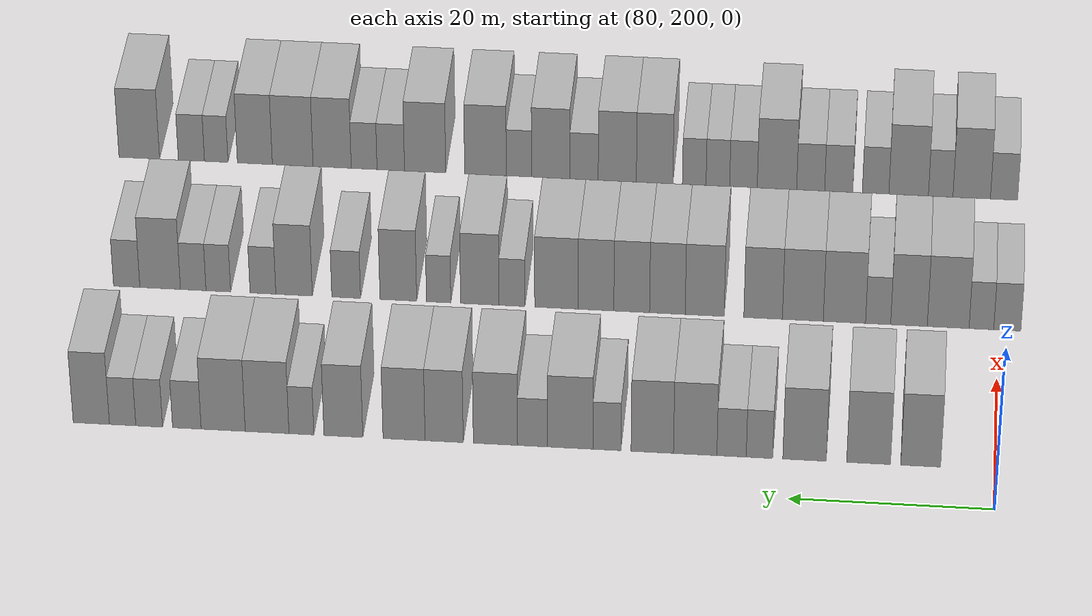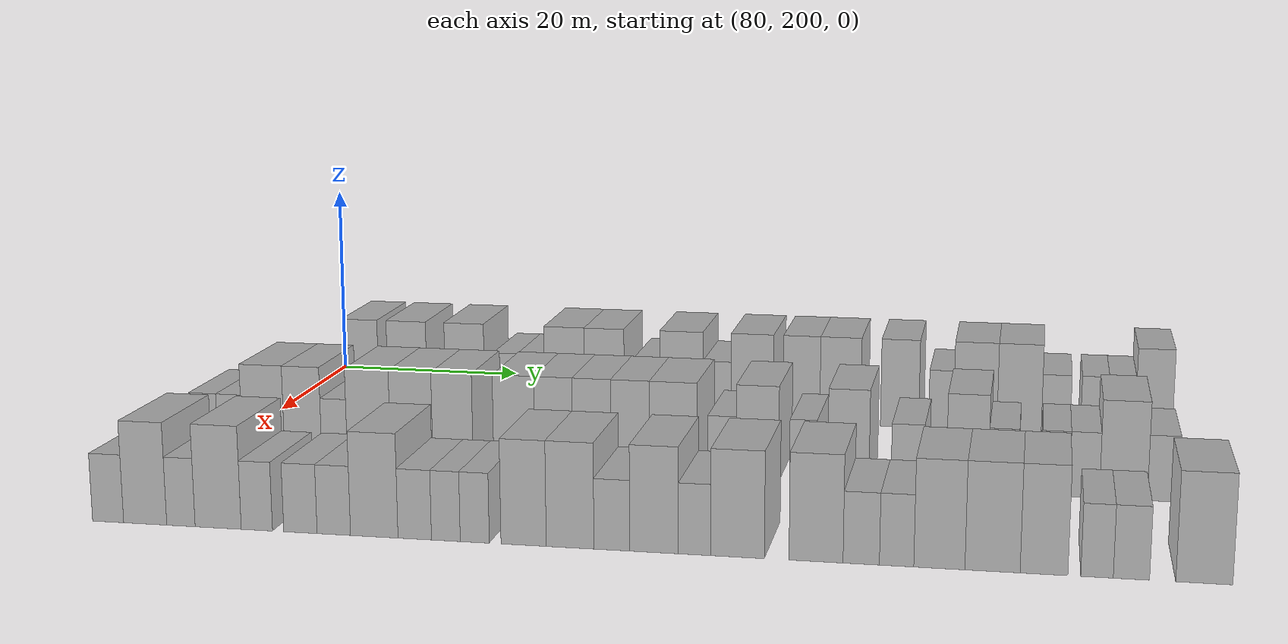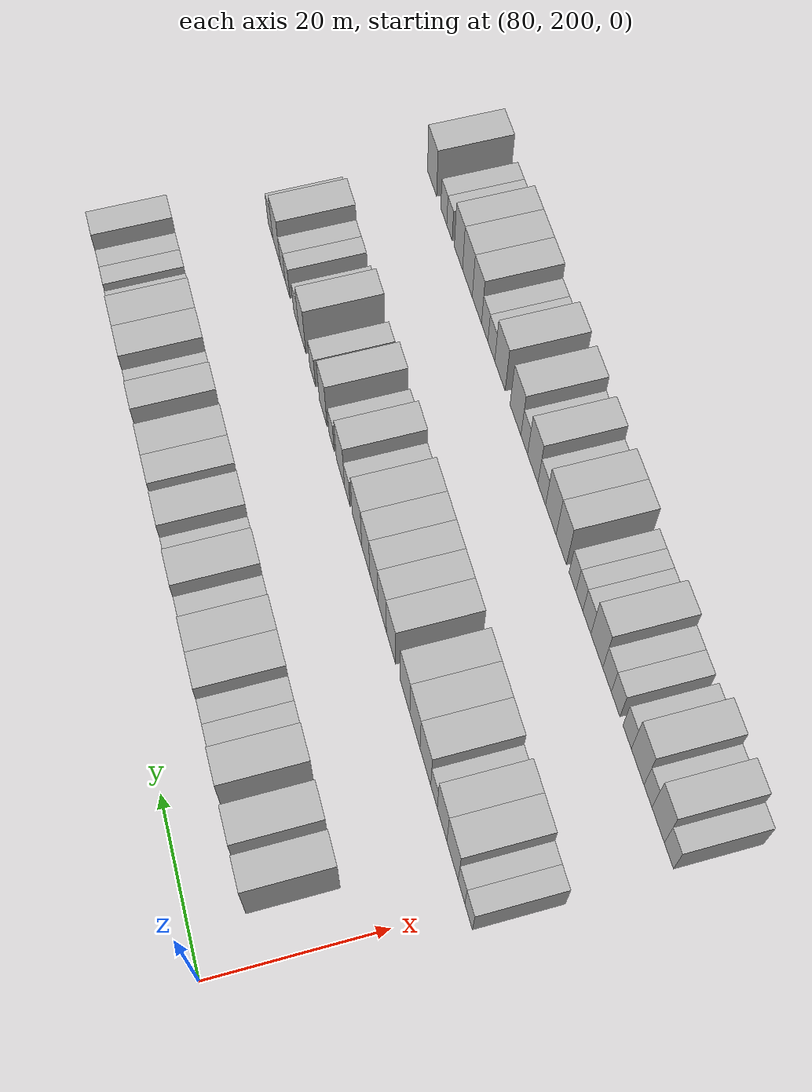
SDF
<sdf version="1.6">
 <world name="default">
  <model name="building_716">
   <static>1</static>
   <pose>91.0000 207.3070 0 0.000000 0.000000 0.000000</pose>
   <link name="link">
    <pose>0 0 4.50 0 0 0</pose>
    <collision name="collision"><geometry><box><size>10.0000 3.8865 9.0000</size></box></geometry></collision>
    <visual name="visual">
     <cast_shadows>0</cast_shadows>
     <geometry><box><size>10.0000 3.8865 9.0000</size></box></geometry>
     <material>
      <script>
       <uri>model://HANNAS_wall/materials/scripts</uri>
       <uri>model://HANNAS_wall/materials/textures</uri>
       <name>vrc/HANNAS_wall</name>
      </script>
     </material>
    </visual>
   </link>
  </model>
  <model name="building_717">
   <static>1</static>
   <pose>91.0000 212.3930 0 0.000000 0.000000 0.000000</pose>
   <link name="link">
    <pose>0 0 4.50 0 0 0</pose>
    <collision name="collision"><geometry><box><size>10.0000 4.2854 9.0000</size></box></geometry></collision>
    <visual name="visual">
     <cast_shadows>0</cast_shadows>
     <geometry><box><size>10.0000 4.2854 9.0000</size></box></geometry>
     <material>
      <script>
       <uri>model://HANNAS_wall/materials/scripts</uri>
       <uri>model://HANNAS_wall/materials/textures</uri>
       <name>vrc/HANNAS_wall</name>
      </script>
     </material>
    </visual>
   </link>
  </model>
  <model name="building_718">
   <static>1</static>
   <pose>91.0000 218.6601 0 0.000000 0.000000 0.000000</pose>
   <link name="link">
    <pose>0 0 4.50 0 0 0</pose>
    <collision name="collision"><geometry><box><size>10.0000 4.2486 9.0000</size></box></geometry></collision>
    <visual name="visual">
     <cast_shadows>0</cast_shadows>
     <geometry><box><size>10.0000 4.2486 9.0000</size></box></geometry>
     <material>
      <script>
       <uri>model://HANNAS_wall/materials/scripts</uri>
       <uri>model://HANNAS_wall/materials/textures</uri>
       <name>vrc/HANNAS_wall</name>
      </script>
     </material>
    </visual>
   </link>
  </model>
  <model name="building_719">
   <static>1</static>
   <pose>91.0000 223.0777 0 0.000000 0.000000 0.000000</pose>
   <link name="link">
    <pose>0 0 3.00 0 0 0</pose>
    <collision name="collision"><geometry><box><size>10.0000 2.5867 6.0000</size></box></geometry></collision>
    <visual name="visual">
     <cast_shadows>0</cast_shadows>
     <geometry><box><size>10.0000 2.5867 6.0000</size></box></geometry>
     <material>
      <script>
       <uri>model://HANNAS_wall/materials/scripts</uri>
       <uri>model://HANNAS_wall/materials/textures</uri>
       <name>vrc/HANNAS_wall</name>
      </script>
     </material>
    </visual>
   </link>
  </model>
  <model name="building_720">
   <static>1</static>
   <pose>91.0000 225.8113 0 0.000000 0.000000 0.000000</pose>
   <link name="link">
    <pose>0 0 3.00 0 0 0</pose>
    <collision name="collision"><geometry><box><size>10.0000 2.8806 6.0000</size></box></geometry></collision>
    <visual name="visual">
     <cast_shadows>0</cast_shadows>
     <geometry><box><size>10.0000 2.8806 6.0000</size></box></geometry>
     <material>
      <script>
       <uri>model://HANNAS_wall/materials/scripts</uri>
       <uri>model://HANNAS_wall/materials/textures</uri>
       <name>vrc/HANNAS_wall</name>
      </script>
     </material>
    </visual>
   </link>
  </model>
  <model name="building_721">
   <static>1</static>
   <pose>91.0000 229.3831 0 0.000000 0.000000 0.000000</pose>
   <link name="link">
    <pose>0 0 4.50 0 0 0</pose>
    <collision name="collision"><geometry><box><size>10.0000 4.2629 9.0000</size></box></geometry></collision>
    <visual name="visual">
     <cast_shadows>0</cast_shadows>
     <geometry><box><size>10.0000 4.2629 9.0000</size></box></geometry>
     <material>
      <script>
       <uri>model://HANNAS_wall/materials/scripts</uri>
       <uri>model://HANNAS_wall/materials/textures</uri>
       <name>vrc/HANNAS_wall</name>
      </script>
     </material>
    </visual>
   </link>
  </model>
  <model name="building_722">
   <static>1</static>
   <pose>91.0000 233.5994 0 0.000000 0.000000 0.000000</pose>
   <link name="link">
    <pose>0 0 4.50 0 0 0</pose>
    <collision name="collision"><geometry><box><size>10.0000 4.1697 9.0000</size></box></geometry></collision>
    <visual name="visual">
     <cast_shadows>0</cast_shadows>
     <geometry><box><size>10.0000 4.1697 9.0000</size></box></geometry>
     <material>
      <script>
       <uri>model://HANNAS_wall/materials/scripts</uri>
       <uri>model://HANNAS_wall/materials/textures</uri>
       <name>vrc/HANNAS_wall</name>
      </script>
     </material>
    </visual>
   </link>
  </model>
  <model name="building_723">
   <static>1</static>
   <pose>91.0000 238.0609 0 0.000000 0.000000 0.000000</pose>
   <link name="link">
    <pose>0 0 3.00 0 0 0</pose>
    <collision name="collision"><geometry><box><size>10.0000 2.7532 6.0000</size></box></geometry></collision>
    <visual name="visual">
     <cast_shadows>0</cast_shadows>
     <geometry><box><size>10.0000 2.7532 6.0000</size></box></geometry>
     <material>
      <script>
       <uri>model://HANNAS_wall/materials/scripts</uri>
       <uri>model://HANNAS_wall/materials/textures</uri>
       <name>vrc/HANNAS_wall</name>
      </script>
     </material>
    </visual>
   </link>
  </model>
  <model name="building_724">
   <static>1</static>
   <pose>91.0000 241.6782 0 0.000000 0.000000 0.000000</pose>
   <link name="link">
    <pose>0 0 4.50 0 0 0</pose>
    <collision name="collision"><geometry><box><size>10.0000 4.4815 9.0000</size></box></geometry></collision>
    <visual name="visual">
     <cast_shadows>0</cast_shadows>
     <geometry><box><size>10.0000 4.4815 9.0000</size></box></geometry>
     <material>
      <script>
       <uri>model://HANNAS_wall/materials/scripts</uri>
       <uri>model://HANNAS_wall/materials/textures</uri>
       <name>vrc/HANNAS_wall</name>
      </script>
     </material>
    </visual>
   </link>
  </model>
  <model name="building_725">
   <static>1</static>
   <pose>91.0000 245.3875 0 0.000000 0.000000 0.000000</pose>
   <link name="link">
    <pose>0 0 3.00 0 0 0</pose>
    <collision name="collision"><geometry><box><size>10.0000 2.9370 6.0000</size></box></geometry></collision>
    <visual name="visual">
     <cast_shadows>0</cast_shadows>
     <geometry><box><size>10.0000 2.9370 6.0000</size></box></geometry>
     <material>
      <script>
       <uri>model://HANNAS_wall/materials/scripts</uri>
       <uri>model://HANNAS_wall/materials/textures</uri>
       <name>vrc/HANNAS_wall</name>
      </script>
     </material>
    </visual>
   </link>
  </model>
  <model name="building_726">
   <static>1</static>
   <pose>91.0000 249.0387 0 0.000000 0.000000 0.000000</pose>
   <link name="link">
    <pose>0 0 4.50 0 0 0</pose>
    <collision name="collision"><geometry><box><size>10.0000 4.3656 9.0000</size></box></geometry></collision>
    <visual name="visual">
     <cast_shadows>0</cast_shadows>
     <geometry><box><size>10.0000 4.3656 9.0000</size></box></geometry>
     <material>
      <script>
       <uri>model://HANNAS_wall/materials/scripts</uri>
       <uri>model://HANNAS_wall/materials/textures</uri>
       <name>vrc/HANNAS_wall</name>
      </script>
     </material>
    </visual>
   </link>
  </model>
  <model name="building_727">
   <static>1</static>
   <pose>91.0000 254.1042 0 0.000000 0.000000 0.000000</pose>
   <link name="link">
    <pose>0 0 4.50 0 0 0</pose>
    <collision name="collision"><geometry><box><size>10.0000 3.7653 9.0000</size></box></geometry></collision>
    <visual name="visual">
     <cast_shadows>0</cast_shadows>
     <geometry><box><size>10.0000 3.7653 9.0000</size></box></geometry>
     <material>
      <script>
       <uri>model://HANNAS_wall/materials/scripts</uri>
       <uri>model://HANNAS_wall/materials/textures</uri>
       <name>vrc/HANNAS_wall</name>
      </script>
     </material>
    </visual>
   </link>
  </model>
  <model name="building_728">
   <static>1</static>
   <pose>91.0000 258.0682 0 0.000000 0.000000 0.000000</pose>
   <link name="link">
    <pose>0 0 4.50 0 0 0</pose>
    <collision name="collision"><geometry><box><size>10.0000 4.1626 9.0000</size></box></geometry></collision>
    <visual name="visual">
     <cast_shadows>0</cast_shadows>
     <geometry><box><size>10.0000 4.1626 9.0000</size></box></geometry>
     <material>
      <script>
       <uri>model://HANNAS_wall/materials/scripts</uri>
       <uri>model://HANNAS_wall/materials/textures</uri>
       <name>vrc/HANNAS_wall</name>
      </script>
     </material>
    </visual>
   </link>
  </model>
  <model name="building_729">
   <static>1</static>
   <pose>91.0000 264.0752 0 0.000000 0.000000 0.000000</pose>
   <link name="link">
    <pose>0 0 4.50 0 0 0</pose>
    <collision name="collision"><geometry><box><size>10.0000 3.8515 9.0000</size></box></geometry></collision>
    <visual name="visual">
     <cast_shadows>0</cast_shadows>
     <geometry><box><size>10.0000 3.8515 9.0000</size></box></geometry>
     <material>
      <script>
       <uri>model://HANNAS_wall/materials/scripts</uri>
       <uri>model://HANNAS_wall/materials/textures</uri>
       <name>vrc/HANNAS_wall</name>
      </script>
     </material>
    </visual>
   </link>
  </model>
  <model name="building_730">
   <static>1</static>
   <pose>91.0000 268.2361 0 0.000000 0.000000 0.000000</pose>
   <link name="link">
    <pose>0 0 3.00 0 0 0</pose>
    <collision name="collision"><geometry><box><size>10.0000 2.4701 6.0000</size></box></geometry></collision>
    <visual name="visual">
     <cast_shadows>0</cast_shadows>
     <geometry><box><size>10.0000 2.4701 6.0000</size></box></geometry>
     <material>
      <script>
       <uri>model://HANNAS_wall/materials/scripts</uri>
       <uri>model://HANNAS_wall/materials/textures</uri>
       <name>vrc/HANNAS_wall</name>
      </script>
     </material>
    </visual>
   </link>
  </model>
  <model name="building_731">
   <static>1</static>
   <pose>91.0000 271.6397 0 0.000000 0.000000 0.000000</pose>
   <link name="link">
    <pose>0 0 4.50 0 0 0</pose>
    <collision name="collision"><geometry><box><size>10.0000 4.3372 9.0000</size></box></geometry></collision>
    <visual name="visual">
     <cast_shadows>0</cast_shadows>
     <geometry><box><size>10.0000 4.3372 9.0000</size></box></geometry>
     <material>
      <script>
       <uri>model://HANNAS_wall/materials/scripts</uri>
       <uri>model://HANNAS_wall/materials/textures</uri>
       <name>vrc/HANNAS_wall</name>
      </script>
     </material>
    </visual>
   </link>
  </model>
  <model name="building_732">
   <static>1</static>
   <pose>91.0000 276.0017 0 0.000000 0.000000 0.000000</pose>
   <link name="link">
    <pose>0 0 4.50 0 0 0</pose>
    <collision name="collision"><geometry><box><size>10.0000 4.3868 9.0000</size></box></geometry></collision>
    <visual name="visual">
     <cast_shadows>0</cast_shadows>
     <geometry><box><size>10.0000 4.3868 9.0000</size></box></geometry>
     <material>
      <script>
       <uri>model://HANNAS_wall/materials/scripts</uri>
       <uri>model://HANNAS_wall/materials/textures</uri>
       <name>vrc/HANNAS_wall</name>
      </script>
     </material>
    </visual>
   </link>
  </model>
  <model name="building_733">
   <static>1</static>
   <pose>91.0000 279.6147 0 0.000000 0.000000 0.000000</pose>
   <link name="link">
    <pose>0 0 3.00 0 0 0</pose>
    <collision name="collision"><geometry><box><size>10.0000 2.8391 6.0000</size></box></geometry></collision>
    <visual name="visual">
     <cast_shadows>0</cast_shadows>
     <geometry><box><size>10.0000 2.8391 6.0000</size></box></geometry>
     <material>
      <script>
       <uri>model://HANNAS_wall/materials/scripts</uri>
       <uri>model://HANNAS_wall/materials/textures</uri>
       <name>vrc/HANNAS_wall</name>
      </script>
     </material>
    </visual>
   </link>
  </model>
  <model name="building_734">
   <static>1</static>
   <pose>91.0000 283.3653 0 0.000000 0.000000 0.000000</pose>
   <link name="link">
    <pose>0 0 3.00 0 0 0</pose>
    <collision name="collision"><geometry><box><size>10.0000 2.6621 6.0000</size></box></geometry></collision>
    <visual name="visual">
     <cast_shadows>0</cast_shadows>
     <geometry><box><size>10.0000 2.6621 6.0000</size></box></geometry>
     <material>
      <script>
       <uri>model://HANNAS_wall/materials/scripts</uri>
       <uri>model://HANNAS_wall/materials/textures</uri>
       <name>vrc/HANNAS_wall</name>
      </script>
     </material>
    </visual>
   </link>
  </model>
  <model name="building_735">
   <static>1</static>
   <pose>91.0000 286.0090 0 0.000000 0.000000 0.000000</pose>
   <link name="link">
    <pose>0 0 3.00 0 0 0</pose>
    <collision name="collision"><geometry><box><size>10.0000 2.6254 6.0000</size></box></geometry></collision>
    <visual name="visual">
     <cast_shadows>0</cast_shadows>
     <geometry><box><size>10.0000 2.6254 6.0000</size></box></geometry>
     <material>
      <script>
       <uri>model://HANNAS_wall/materials/scripts</uri>
       <uri>model://HANNAS_wall/materials/textures</uri>
       <name>vrc/HANNAS_wall</name>
      </script>
     </material>
    </visual>
   </link>
  </model>
  <model name="building_736">
   <static>1</static>
   <pose>91.0000 289.1247 0 0.000000 0.000000 0.000000</pose>
   <link name="link">
    <pose>0 0 4.50 0 0 0</pose>
    <collision name="collision"><geometry><box><size>10.0000 3.6060 9.0000</size></box></geometry></collision>
    <visual name="visual">
     <cast_shadows>0</cast_shadows>
     <geometry><box><size>10.0000 3.6060 9.0000</size></box></geometry>
     <material>
      <script>
       <uri>model://HANNAS_wall/materials/scripts</uri>
       <uri>model://HANNAS_wall/materials/textures</uri>
       <name>vrc/HANNAS_wall</name>
      </script>
     </material>
    </visual>
   </link>
  </model>
  <model name="building_896">
   <static>1</static>
   <pose>113.0000 199.0584 0 0.000000 0.000000 0.000000</pose>
   <link name="link">
    <pose>0 0 3.00 0 0 0</pose>
    <collision name="collision"><geometry><box><size>10.0000 2.7329 6.0000</size></box></geometry></collision>
    <visual name="visual">
     <cast_shadows>0</cast_shadows>
     <geometry><box><size>10.0000 2.7329 6.0000</size></box></geometry>
     <material>
      <script>
       <uri>model://HANNAS_wall/materials/scripts</uri>
       <uri>model://HANNAS_wall/materials/textures</uri>
       <name>vrc/HANNAS_wall</name>
      </script>
     </material>
    </visual>
   </link>
  </model>
  <model name="building_897">
   <static>1</static>
   <pose>113.0000 201.6703 0 0.000000 0.000000 0.000000</pose>
   <link name="link">
    <pose>0 0 3.00 0 0 0</pose>
    <collision name="collision"><geometry><box><size>10.0000 2.4909 6.0000</size></box></geometry></collision>
    <visual name="visual">
     <cast_shadows>0</cast_shadows>
     <geometry><box><size>10.0000 2.4909 6.0000</size></box></geometry>
     <material>
      <script>
       <uri>model://HANNAS_wall/materials/scripts</uri>
       <uri>model://HANNAS_wall/materials/textures</uri>
       <name>vrc/HANNAS_wall</name>
      </script>
     </material>
    </visual>
   </link>
  </model>
  <model name="building_898">
   <static>1</static>
   <pose>113.0000 205.0286 0 0.000000 0.000000 0.000000</pose>
   <link name="link">
    <pose>0 0 4.50 0 0 0</pose>
    <collision name="collision"><geometry><box><size>10.0000 4.2257 9.0000</size></box></geometry></collision>
    <visual name="visual">
     <cast_shadows>0</cast_shadows>
     <geometry><box><size>10.0000 4.2257 9.0000</size></box></geometry>
     <material>
      <script>
       <uri>model://HANNAS_wall/materials/scripts</uri>
       <uri>model://HANNAS_wall/materials/textures</uri>
       <name>vrc/HANNAS_wall</name>
      </script>
     </material>
    </visual>
   </link>
  </model>
  <model name="building_899">
   <static>1</static>
   <pose>113.0000 208.9925 0 0.000000 0.000000 0.000000</pose>
   <link name="link">
    <pose>0 0 4.50 0 0 0</pose>
    <collision name="collision"><geometry><box><size>10.0000 3.7021 9.0000</size></box></geometry></collision>
    <visual name="visual">
     <cast_shadows>0</cast_shadows>
     <geometry><box><size>10.0000 3.7021 9.0000</size></box></geometry>
     <material>
      <script>
       <uri>model://HANNAS_wall/materials/scripts</uri>
       <uri>model://HANNAS_wall/materials/textures</uri>
       <name>vrc/HANNAS_wall</name>
      </script>
     </material>
    </visual>
   </link>
  </model>
  <model name="building_900">
   <static>1</static>
   <pose>113.0000 212.1144 0 0.000000 0.000000 0.000000</pose>
   <link name="link">
    <pose>0 0 3.00 0 0 0</pose>
    <collision name="collision"><geometry><box><size>10.0000 2.5417 6.0000</size></box></geometry></collision>
    <visual name="visual">
     <cast_shadows>0</cast_shadows>
     <geometry><box><size>10.0000 2.5417 6.0000</size></box></geometry>
     <material>
      <script>
       <uri>model://HANNAS_wall/materials/scripts</uri>
       <uri>model://HANNAS_wall/materials/textures</uri>
       <name>vrc/HANNAS_wall</name>
      </script>
     </material>
    </visual>
   </link>
  </model>
  <model name="building_901">
   <static>1</static>
   <pose>113.0000 215.5264 0 0.000000 0.000000 0.000000</pose>
   <link name="link">
    <pose>0 0 4.50 0 0 0</pose>
    <collision name="collision"><geometry><box><size>10.0000 4.2824 9.0000</size></box></geometry></collision>
    <visual name="visual">
     <cast_shadows>0</cast_shadows>
     <geometry><box><size>10.0000 4.2824 9.0000</size></box></geometry>
     <material>
      <script>
       <uri>model://HANNAS_wall/materials/scripts</uri>
       <uri>model://HANNAS_wall/materials/textures</uri>
       <name>vrc/HANNAS_wall</name>
      </script>
     </material>
    </visual>
   </link>
  </model>
  <model name="building_902">
   <static>1</static>
   <pose>113.0000 219.7402 0 0.000000 0.000000 0.000000</pose>
   <link name="link">
    <pose>0 0 4.50 0 0 0</pose>
    <collision name="collision"><geometry><box><size>10.0000 4.1451 9.0000</size></box></geometry></collision>
    <visual name="visual">
     <cast_shadows>0</cast_shadows>
     <geometry><box><size>10.0000 4.1451 9.0000</size></box></geometry>
     <material>
      <script>
       <uri>model://HANNAS_wall/materials/scripts</uri>
       <uri>model://HANNAS_wall/materials/textures</uri>
       <name>vrc/HANNAS_wall</name>
      </script>
     </material>
    </visual>
   </link>
  </model>
  <model name="building_903">
   <static>1</static>
   <pose>113.0000 223.7726 0 0.000000 0.000000 0.000000</pose>
   <link name="link">
    <pose>0 0 4.50 0 0 0</pose>
    <collision name="collision"><geometry><box><size>10.0000 3.9197 9.0000</size></box></geometry></collision>
    <visual name="visual">
     <cast_shadows>0</cast_shadows>
     <geometry><box><size>10.0000 3.9197 9.0000</size></box></geometry>
     <material>
      <script>
       <uri>model://HANNAS_wall/materials/scripts</uri>
       <uri>model://HANNAS_wall/materials/textures</uri>
       <name>vrc/HANNAS_wall</name>
      </script>
     </material>
    </visual>
   </link>
  </model>
  <model name="building_904">
   <static>1</static>
   <pose>113.0000 229.7136 0 0.000000 0.000000 0.000000</pose>
   <link name="link">
    <pose>0 0 4.50 0 0 0</pose>
    <collision name="collision"><geometry><box><size>10.0000 3.9625 9.0000</size></box></geometry></collision>
    <visual name="visual">
     <cast_shadows>0</cast_shadows>
     <geometry><box><size>10.0000 3.9625 9.0000</size></box></geometry>
     <material>
      <script>
       <uri>model://HANNAS_wall/materials/scripts</uri>
       <uri>model://HANNAS_wall/materials/textures</uri>
       <name>vrc/HANNAS_wall</name>
      </script>
     </material>
    </visual>
   </link>
  </model>
  <model name="building_905">
   <static>1</static>
   <pose>113.0000 233.5064 0 0.000000 0.000000 0.000000</pose>
   <link name="link">
    <pose>0 0 4.50 0 0 0</pose>
    <collision name="collision"><geometry><box><size>10.0000 3.6230 9.0000</size></box></geometry></collision>
    <visual name="visual">
     <cast_shadows>0</cast_shadows>
     <geometry><box><size>10.0000 3.6230 9.0000</size></box></geometry>
     <material>
      <script>
       <uri>model://HANNAS_wall/materials/scripts</uri>
       <uri>model://HANNAS_wall/materials/textures</uri>
       <name>vrc/HANNAS_wall</name>
      </script>
     </material>
    </visual>
   </link>
  </model>
  <model name="building_906">
   <static>1</static>
   <pose>113.0000 237.1377 0 0.000000 0.000000 0.000000</pose>
   <link name="link">
    <pose>0 0 4.50 0 0 0</pose>
    <collision name="collision"><geometry><box><size>10.0000 3.6398 9.0000</size></box></geometry></collision>
    <visual name="visual">
     <cast_shadows>0</cast_shadows>
     <geometry><box><size>10.0000 3.6398 9.0000</size></box></geometry>
     <material>
      <script>
       <uri>model://HANNAS_wall/materials/scripts</uri>
       <uri>model://HANNAS_wall/materials/textures</uri>
       <name>vrc/HANNAS_wall</name>
      </script>
     </material>
    </visual>
   </link>
  </model>
  <model name="building_907">
   <static>1</static>
   <pose>113.0000 240.7746 0 0.000000 0.000000 0.000000</pose>
   <link name="link">
    <pose>0 0 4.50 0 0 0</pose>
    <collision name="collision"><geometry><box><size>10.0000 3.6340 9.0000</size></box></geometry></collision>
    <visual name="visual">
     <cast_shadows>0</cast_shadows>
     <geometry><box><size>10.0000 3.6340 9.0000</size></box></geometry>
     <material>
      <script>
       <uri>model://HANNAS_wall/materials/scripts</uri>
       <uri>model://HANNAS_wall/materials/textures</uri>
       <name>vrc/HANNAS_wall</name>
      </script>
     </material>
    </visual>
   </link>
  </model>
  <model name="building_908">
   <static>1</static>
   <pose>113.0000 244.8087 0 0.000000 0.000000 0.000000</pose>
   <link name="link">
    <pose>0 0 4.50 0 0 0</pose>
    <collision name="collision"><geometry><box><size>10.0000 4.4341 9.0000</size></box></geometry></collision>
    <visual name="visual">
     <cast_shadows>0</cast_shadows>
     <geometry><box><size>10.0000 4.4341 9.0000</size></box></geometry>
     <material>
      <script>
       <uri>model://HANNAS_wall/materials/scripts</uri>
       <uri>model://HANNAS_wall/materials/textures</uri>
       <name>vrc/HANNAS_wall</name>
      </script>
     </material>
    </visual>
   </link>
  </model>
  <model name="building_909">
   <static>1</static>
   <pose>113.0000 249.3443 0 0.000000 0.000000 0.000000</pose>
   <link name="link">
    <pose>0 0 3.00 0 0 0</pose>
    <collision name="collision"><geometry><box><size>10.0000 2.6371 6.0000</size></box></geometry></collision>
    <visual name="visual">
     <cast_shadows>0</cast_shadows>
     <geometry><box><size>10.0000 2.6371 6.0000</size></box></geometry>
     <material>
      <script>
       <uri>model://HANNAS_wall/materials/scripts</uri>
       <uri>model://HANNAS_wall/materials/textures</uri>
       <name>vrc/HANNAS_wall</name>
      </script>
     </material>
    </visual>
   </link>
  </model>
  <model name="building_910">
   <static>1</static>
   <pose>113.0000 252.6325 0 0.000000 0.000000 0.000000</pose>
   <link name="link">
    <pose>0 0 4.50 0 0 0</pose>
    <collision name="collision"><geometry><box><size>10.0000 3.9393 9.0000</size></box></geometry></collision>
    <visual name="visual">
     <cast_shadows>0</cast_shadows>
     <geometry><box><size>10.0000 3.9393 9.0000</size></box></geometry>
     <material>
      <script>
       <uri>model://HANNAS_wall/materials/scripts</uri>
       <uri>model://HANNAS_wall/materials/textures</uri>
       <name>vrc/HANNAS_wall</name>
      </script>
     </material>
    </visual>
   </link>
  </model>
  <model name="building_911">
   <static>1</static>
   <pose>113.0000 256.8468 0 0.000000 0.000000 0.000000</pose>
   <link name="link">
    <pose>0 0 3.00 0 0 0</pose>
    <collision name="collision"><geometry><box><size>10.0000 2.4893 6.0000</size></box></geometry></collision>
    <visual name="visual">
     <cast_shadows>0</cast_shadows>
     <geometry><box><size>10.0000 2.4893 6.0000</size></box></geometry>
     <material>
      <script>
       <uri>model://HANNAS_wall/materials/scripts</uri>
       <uri>model://HANNAS_wall/materials/textures</uri>
       <name>vrc/HANNAS_wall</name>
      </script>
     </material>
    </visual>
   </link>
  </model>
  <model name="building_912">
   <static>1</static>
   <pose>113.0000 260.9731 0 0.000000 0.000000 0.000000</pose>
   <link name="link">
    <pose>0 0 4.50 0 0 0</pose>
    <collision name="collision"><geometry><box><size>10.0000 3.7632 9.0000</size></box></geometry></collision>
    <visual name="visual">
     <cast_shadows>0</cast_shadows>
     <geometry><box><size>10.0000 3.7632 9.0000</size></box></geometry>
     <material>
      <script>
       <uri>model://HANNAS_wall/materials/scripts</uri>
       <uri>model://HANNAS_wall/materials/textures</uri>
       <name>vrc/HANNAS_wall</name>
      </script>
     </material>
    </visual>
   </link>
  </model>
  <model name="building_913">
   <static>1</static>
   <pose>113.0000 266.3288 0 0.000000 0.000000 0.000000</pose>
   <link name="link">
    <pose>0 0 3.00 0 0 0</pose>
    <collision name="collision"><geometry><box><size>10.0000 2.9481 6.0000</size></box></geometry></collision>
    <visual name="visual">
     <cast_shadows>0</cast_shadows>
     <geometry><box><size>10.0000 2.9481 6.0000</size></box></geometry>
     <material>
      <script>
       <uri>model://HANNAS_wall/materials/scripts</uri>
       <uri>model://HANNAS_wall/materials/textures</uri>
       <name>vrc/HANNAS_wall</name>
      </script>
     </material>
    </visual>
   </link>
  </model>
  <model name="building_914">
   <static>1</static>
   <pose>113.0000 271.6770 0 0.000000 0.000000 0.000000</pose>
   <link name="link">
    <pose>0 0 4.50 0 0 0</pose>
    <collision name="collision"><geometry><box><size>10.0000 3.7484 9.0000</size></box></geometry></collision>
    <visual name="visual">
     <cast_shadows>0</cast_shadows>
     <geometry><box><size>10.0000 3.7484 9.0000</size></box></geometry>
     <material>
      <script>
       <uri>model://HANNAS_wall/materials/scripts</uri>
       <uri>model://HANNAS_wall/materials/textures</uri>
       <name>vrc/HANNAS_wall</name>
      </script>
     </material>
    </visual>
   </link>
  </model>
  <model name="building_915">
   <static>1</static>
   <pose>113.0000 274.8765 0 0.000000 0.000000 0.000000</pose>
   <link name="link">
    <pose>0 0 3.00 0 0 0</pose>
    <collision name="collision"><geometry><box><size>10.0000 2.6505 6.0000</size></box></geometry></collision>
    <visual name="visual">
     <cast_shadows>0</cast_shadows>
     <geometry><box><size>10.0000 2.6505 6.0000</size></box></geometry>
     <material>
      <script>
       <uri>model://HANNAS_wall/materials/scripts</uri>
       <uri>model://HANNAS_wall/materials/textures</uri>
       <name>vrc/HANNAS_wall</name>
      </script>
     </material>
    </visual>
   </link>
  </model>
  <model name="building_916">
   <static>1</static>
   <pose>113.0000 279.4693 0 0.000000 0.000000 0.000000</pose>
   <link name="link">
    <pose>0 0 3.00 0 0 0</pose>
    <collision name="collision"><geometry><box><size>10.0000 2.5352 6.0000</size></box></geometry></collision>
    <visual name="visual">
     <cast_shadows>0</cast_shadows>
     <geometry><box><size>10.0000 2.5352 6.0000</size></box></geometry>
     <material>
      <script>
       <uri>model://HANNAS_wall/materials/scripts</uri>
       <uri>model://HANNAS_wall/materials/textures</uri>
       <name>vrc/HANNAS_wall</name>
      </script>
     </material>
    </visual>
   </link>
  </model>
  <model name="building_917">
   <static>1</static>
   <pose>113.0000 282.0536 0 0.000000 0.000000 0.000000</pose>
   <link name="link">
    <pose>0 0 3.00 0 0 0</pose>
    <collision name="collision"><geometry><box><size>10.0000 2.6333 6.0000</size></box></geometry></collision>
    <visual name="visual">
     <cast_shadows>0</cast_shadows>
     <geometry><box><size>10.0000 2.6333 6.0000</size></box></geometry>
     <material>
      <script>
       <uri>model://HANNAS_wall/materials/scripts</uri>
       <uri>model://HANNAS_wall/materials/textures</uri>
       <name>vrc/HANNAS_wall</name>
      </script>
     </material>
    </visual>
   </link>
  </model>
  <model name="building_918">
   <static>1</static>
   <pose>113.0000 285.4611 0 0.000000 0.000000 0.000000</pose>
   <link name="link">
    <pose>0 0 4.50 0 0 0</pose>
    <collision name="collision"><geometry><box><size>10.0000 4.1817 9.0000</size></box></geometry></collision>
    <visual name="visual">
     <cast_shadows>0</cast_shadows>
     <geometry><box><size>10.0000 4.1817 9.0000</size></box></geometry>
     <material>
      <script>
       <uri>model://HANNAS_wall/materials/scripts</uri>
       <uri>model://HANNAS_wall/materials/textures</uri>
       <name>vrc/HANNAS_wall</name>
      </script>
     </material>
    </visual>
   </link>
  </model>
  <model name="building_919">
   <static>1</static>
   <pose>113.0000 288.9073 0 0.000000 0.000000 0.000000</pose>
   <link name="link">
    <pose>0 0 3.00 0 0 0</pose>
    <collision name="collision"><geometry><box><size>10.0000 2.7107 6.0000</size></box></geometry></collision>
    <visual name="visual">
     <cast_shadows>0</cast_shadows>
     <geometry><box><size>10.0000 2.7107 6.0000</size></box></geometry>
     <material>
      <script>
       <uri>model://HANNAS_wall/materials/scripts</uri>
       <uri>model://HANNAS_wall/materials/textures</uri>
       <name>vrc/HANNAS_wall</name>
      </script>
     </material>
    </visual>
   </link>
  </model>
  <model name="building_1086">
   <static>1</static>
   <pose>135.0000 199.5993 0 0.000000 0.000000 0.000000</pose>
   <link name="link">
    <pose>0 0 3.00 0 0 0</pose>
    <collision name="collision"><geometry><box><size>10.0000 2.8401 6.0000</size></box></geometry></collision>
    <visual name="visual">
     <cast_shadows>0</cast_shadows>
     <geometry><box><size>10.0000 2.8401 6.0000</size></box></geometry>
     <material>
      <script>
       <uri>model://HANNAS_wall/materials/scripts</uri>
       <uri>model://HANNAS_wall/materials/textures</uri>
       <name>vrc/HANNAS_wall</name>
      </script>
     </material>
    </visual>
   </link>
  </model>
  <model name="building_1087">
   <static>1</static>
   <pose>135.0000 202.9779 0 0.000000 0.000000 0.000000</pose>
   <link name="link">
    <pose>0 0 4.50 0 0 0</pose>
    <collision name="collision"><geometry><box><size>10.0000 3.9171 9.0000</size></box></geometry></collision>
    <visual name="visual">
     <cast_shadows>0</cast_shadows>
     <geometry><box><size>10.0000 3.9171 9.0000</size></box></geometry>
     <material>
      <script>
       <uri>model://HANNAS_wall/materials/scripts</uri>
       <uri>model://HANNAS_wall/materials/textures</uri>
       <name>vrc/HANNAS_wall</name>
      </script>
     </material>
    </visual>
   </link>
  </model>
  <model name="building_1088">
   <static>1</static>
   <pose>135.0000 206.2181 0 0.000000 0.000000 0.000000</pose>
   <link name="link">
    <pose>0 0 3.00 0 0 0</pose>
    <collision name="collision"><geometry><box><size>10.0000 2.5634 6.0000</size></box></geometry></collision>
    <visual name="visual">
     <cast_shadows>0</cast_shadows>
     <geometry><box><size>10.0000 2.5634 6.0000</size></box></geometry>
     <material>
      <script>
       <uri>model://HANNAS_wall/materials/scripts</uri>
       <uri>model://HANNAS_wall/materials/textures</uri>
       <name>vrc/HANNAS_wall</name>
      </script>
     </material>
    </visual>
   </link>
  </model>
  <model name="building_1089">
   <static>1</static>
   <pose>135.0000 209.5683 0 0.000000 0.000000 0.000000</pose>
   <link name="link">
    <pose>0 0 4.50 0 0 0</pose>
    <collision name="collision"><geometry><box><size>10.0000 4.1370 9.0000</size></box></geometry></collision>
    <visual name="visual">
     <cast_shadows>0</cast_shadows>
     <geometry><box><size>10.0000 4.1370 9.0000</size></box></geometry>
     <material>
      <script>
       <uri>model://HANNAS_wall/materials/scripts</uri>
       <uri>model://HANNAS_wall/materials/textures</uri>
       <name>vrc/HANNAS_wall</name>
      </script>
     </material>
    </visual>
   </link>
  </model>
  <model name="building_1090">
   <static>1</static>
   <pose>135.0000 213.0289 0 0.000000 0.000000 0.000000</pose>
   <link name="link">
    <pose>0 0 3.00 0 0 0</pose>
    <collision name="collision"><geometry><box><size>10.0000 2.7841 6.0000</size></box></geometry></collision>
    <visual name="visual">
     <cast_shadows>0</cast_shadows>
     <geometry><box><size>10.0000 2.7841 6.0000</size></box></geometry>
     <material>
      <script>
       <uri>model://HANNAS_wall/materials/scripts</uri>
       <uri>model://HANNAS_wall/materials/textures</uri>
       <name>vrc/HANNAS_wall</name>
      </script>
     </material>
    </visual>
   </link>
  </model>
  <model name="building_1091">
   <static>1</static>
   <pose>135.0000 216.8939 0 0.000000 0.000000 0.000000</pose>
   <link name="link">
    <pose>0 0 3.00 0 0 0</pose>
    <collision name="collision"><geometry><box><size>10.0000 2.9460 6.0000</size></box></geometry></collision>
    <visual name="visual">
     <cast_shadows>0</cast_shadows>
     <geometry><box><size>10.0000 2.9460 6.0000</size></box></geometry>
     <material>
      <script>
       <uri>model://HANNAS_wall/materials/scripts</uri>
       <uri>model://HANNAS_wall/materials/textures</uri>
       <name>vrc/HANNAS_wall</name>
      </script>
     </material>
    </visual>
   </link>
  </model>
  <model name="building_1092">
   <static>1</static>
   <pose>135.0000 219.8355 0 0.000000 0.000000 0.000000</pose>
   <link name="link">
    <pose>0 0 3.00 0 0 0</pose>
    <collision name="collision"><geometry><box><size>10.0000 2.9373 6.0000</size></box></geometry></collision>
    <visual name="visual">
     <cast_shadows>0</cast_shadows>
     <geometry><box><size>10.0000 2.9373 6.0000</size></box></geometry>
     <material>
      <script>
       <uri>model://HANNAS_wall/materials/scripts</uri>
       <uri>model://HANNAS_wall/materials/textures</uri>
       <name>vrc/HANNAS_wall</name>
      </script>
     </material>
    </visual>
   </link>
  </model>
  <model name="building_1093">
   <static>1</static>
   <pose>135.0000 223.3748 0 0.000000 0.000000 0.000000</pose>
   <link name="link">
    <pose>0 0 4.50 0 0 0</pose>
    <collision name="collision"><geometry><box><size>10.0000 4.1413 9.0000</size></box></geometry></collision>
    <visual name="visual">
     <cast_shadows>0</cast_shadows>
     <geometry><box><size>10.0000 4.1413 9.0000</size></box></geometry>
     <material>
      <script>
       <uri>model://HANNAS_wall/materials/scripts</uri>
       <uri>model://HANNAS_wall/materials/textures</uri>
       <name>vrc/HANNAS_wall</name>
      </script>
     </material>
    </visual>
   </link>
  </model>
  <model name="building_1094">
   <static>1</static>
   <pose>135.0000 226.8955 0 0.000000 0.000000 0.000000</pose>
   <link name="link">
    <pose>0 0 3.00 0 0 0</pose>
    <collision name="collision"><geometry><box><size>10.0000 2.9000 6.0000</size></box></geometry></collision>
    <visual name="visual">
     <cast_shadows>0</cast_shadows>
     <geometry><box><size>10.0000 2.9000 6.0000</size></box></geometry>
     <material>
      <script>
       <uri>model://HANNAS_wall/materials/scripts</uri>
       <uri>model://HANNAS_wall/materials/textures</uri>
       <name>vrc/HANNAS_wall</name>
      </script>
     </material>
    </visual>
   </link>
  </model>
  <model name="building_1095">
   <static>1</static>
   <pose>135.0000 229.5856 0 0.000000 0.000000 0.000000</pose>
   <link name="link">
    <pose>0 0 3.00 0 0 0</pose>
    <collision name="collision"><geometry><box><size>10.0000 2.4802 6.0000</size></box></geometry></collision>
    <visual name="visual">
     <cast_shadows>0</cast_shadows>
     <geometry><box><size>10.0000 2.4802 6.0000</size></box></geometry>
     <material>
      <script>
       <uri>model://HANNAS_wall/materials/scripts</uri>
       <uri>model://HANNAS_wall/materials/textures</uri>
       <name>vrc/HANNAS_wall</name>
      </script>
     </material>
    </visual>
   </link>
  </model>
  <model name="building_1096">
   <static>1</static>
   <pose>135.0000 232.0705 0 0.000000 0.000000 0.000000</pose>
   <link name="link">
    <pose>0 0 3.00 0 0 0</pose>
    <collision name="collision"><geometry><box><size>10.0000 2.4895 6.0000</size></box></geometry></collision>
    <visual name="visual">
     <cast_shadows>0</cast_shadows>
     <geometry><box><size>10.0000 2.4895 6.0000</size></box></geometry>
     <material>
      <script>
       <uri>model://HANNAS_wall/materials/scripts</uri>
       <uri>model://HANNAS_wall/materials/textures</uri>
       <name>vrc/HANNAS_wall</name>
      </script>
     </material>
    </visual>
   </link>
  </model>
  <model name="building_1097">
   <static>1</static>
   <pose>135.0000 236.2385 0 0.000000 0.000000 0.000000</pose>
   <link name="link">
    <pose>0 0 4.50 0 0 0</pose>
    <collision name="collision"><geometry><box><size>10.0000 3.8464 9.0000</size></box></geometry></collision>
    <visual name="visual">
     <cast_shadows>0</cast_shadows>
     <geometry><box><size>10.0000 3.8464 9.0000</size></box></geometry>
     <material>
      <script>
       <uri>model://HANNAS_wall/materials/scripts</uri>
       <uri>model://HANNAS_wall/materials/textures</uri>
       <name>vrc/HANNAS_wall</name>
      </script>
     </material>
    </visual>
   </link>
  </model>
  <model name="building_1098">
   <static>1</static>
   <pose>135.0000 240.1733 0 0.000000 0.000000 0.000000</pose>
   <link name="link">
    <pose>0 0 4.50 0 0 0</pose>
    <collision name="collision"><geometry><box><size>10.0000 4.0233 9.0000</size></box></geometry></collision>
    <visual name="visual">
     <cast_shadows>0</cast_shadows>
     <geometry><box><size>10.0000 4.0233 9.0000</size></box></geometry>
     <material>
      <script>
       <uri>model://HANNAS_wall/materials/scripts</uri>
       <uri>model://HANNAS_wall/materials/textures</uri>
       <name>vrc/HANNAS_wall</name>
      </script>
     </material>
    </visual>
   </link>
  </model>
  <model name="building_1099">
   <static>1</static>
   <pose>135.0000 243.6812 0 0.000000 0.000000 0.000000</pose>
   <link name="link">
    <pose>0 0 3.00 0 0 0</pose>
    <collision name="collision"><geometry><box><size>10.0000 2.9924 6.0000</size></box></geometry></collision>
    <visual name="visual">
     <cast_shadows>0</cast_shadows>
     <geometry><box><size>10.0000 2.9924 6.0000</size></box></geometry>
     <material>
      <script>
       <uri>model://HANNAS_wall/materials/scripts</uri>
       <uri>model://HANNAS_wall/materials/textures</uri>
       <name>vrc/HANNAS_wall</name>
      </script>
     </material>
    </visual>
   </link>
  </model>
  <model name="building_1100">
   <static>1</static>
   <pose>135.0000 247.1975 0 0.000000 0.000000 0.000000</pose>
   <link name="link">
    <pose>0 0 4.50 0 0 0</pose>
    <collision name="collision"><geometry><box><size>10.0000 4.0402 9.0000</size></box></geometry></collision>
    <visual name="visual">
     <cast_shadows>0</cast_shadows>
     <geometry><box><size>10.0000 4.0402 9.0000</size></box></geometry>
     <material>
      <script>
       <uri>model://HANNAS_wall/materials/scripts</uri>
       <uri>model://HANNAS_wall/materials/textures</uri>
       <name>vrc/HANNAS_wall</name>
      </script>
     </material>
    </visual>
   </link>
  </model>
  <model name="building_1101">
   <static>1</static>
   <pose>135.0000 250.5509 0 0.000000 0.000000 0.000000</pose>
   <link name="link">
    <pose>0 0 3.00 0 0 0</pose>
    <collision name="collision"><geometry><box><size>10.0000 2.6667 6.0000</size></box></geometry></collision>
    <visual name="visual">
     <cast_shadows>0</cast_shadows>
     <geometry><box><size>10.0000 2.6667 6.0000</size></box></geometry>
     <material>
      <script>
       <uri>model://HANNAS_wall/materials/scripts</uri>
       <uri>model://HANNAS_wall/materials/textures</uri>
       <name>vrc/HANNAS_wall</name>
      </script>
     </material>
    </visual>
   </link>
  </model>
  <model name="building_1102">
   <static>1</static>
   <pose>135.0000 254.0868 0 0.000000 0.000000 0.000000</pose>
   <link name="link">
    <pose>0 0 4.50 0 0 0</pose>
    <collision name="collision"><geometry><box><size>10.0000 4.4051 9.0000</size></box></geometry></collision>
    <visual name="visual">
     <cast_shadows>0</cast_shadows>
     <geometry><box><size>10.0000 4.4051 9.0000</size></box></geometry>
     <material>
      <script>
       <uri>model://HANNAS_wall/materials/scripts</uri>
       <uri>model://HANNAS_wall/materials/textures</uri>
       <name>vrc/HANNAS_wall</name>
      </script>
     </material>
    </visual>
   </link>
  </model>
  <model name="building_1103">
   <static>1</static>
   <pose>135.0000 260.4755 0 0.000000 0.000000 0.000000</pose>
   <link name="link">
    <pose>0 0 4.50 0 0 0</pose>
    <collision name="collision"><geometry><box><size>10.0000 4.3723 9.0000</size></box></geometry></collision>
    <visual name="visual">
     <cast_shadows>0</cast_shadows>
     <geometry><box><size>10.0000 4.3723 9.0000</size></box></geometry>
     <material>
      <script>
       <uri>model://HANNAS_wall/materials/scripts</uri>
       <uri>model://HANNAS_wall/materials/textures</uri>
       <name>vrc/HANNAS_wall</name>
      </script>
     </material>
    </visual>
   </link>
  </model>
  <model name="building_1104">
   <static>1</static>
   <pose>135.0000 264.1202 0 0.000000 0.000000 0.000000</pose>
   <link name="link">
    <pose>0 0 3.00 0 0 0</pose>
    <collision name="collision"><geometry><box><size>10.0000 2.9172 6.0000</size></box></geometry></collision>
    <visual name="visual">
     <cast_shadows>0</cast_shadows>
     <geometry><box><size>10.0000 2.9172 6.0000</size></box></geometry>
     <material>
      <script>
       <uri>model://HANNAS_wall/materials/scripts</uri>
       <uri>model://HANNAS_wall/materials/textures</uri>
       <name>vrc/HANNAS_wall</name>
      </script>
     </material>
    </visual>
   </link>
  </model>
  <model name="building_1105">
   <static>1</static>
   <pose>135.0000 266.9497 0 0.000000 0.000000 0.000000</pose>
   <link name="link">
    <pose>0 0 3.00 0 0 0</pose>
    <collision name="collision"><geometry><box><size>10.0000 2.7418 6.0000</size></box></geometry></collision>
    <visual name="visual">
     <cast_shadows>0</cast_shadows>
     <geometry><box><size>10.0000 2.7418 6.0000</size></box></geometry>
     <material>
      <script>
       <uri>model://HANNAS_wall/materials/scripts</uri>
       <uri>model://HANNAS_wall/materials/textures</uri>
       <name>vrc/HANNAS_wall</name>
      </script>
     </material>
    </visual>
   </link>
  </model>
  <model name="building_1106">
   <static>1</static>
   <pose>135.0000 270.3448 0 0.000000 0.000000 0.000000</pose>
   <link name="link">
    <pose>0 0 4.50 0 0 0</pose>
    <collision name="collision"><geometry><box><size>10.0000 4.0482 9.0000</size></box></geometry></collision>
    <visual name="visual">
     <cast_shadows>0</cast_shadows>
     <geometry><box><size>10.0000 4.0482 9.0000</size></box></geometry>
     <material>
      <script>
       <uri>model://HANNAS_wall/materials/scripts</uri>
       <uri>model://HANNAS_wall/materials/textures</uri>
       <name>vrc/HANNAS_wall</name>
      </script>
     </material>
    </visual>
   </link>
  </model>
  <model name="building_1107">
   <static>1</static>
   <pose>135.0000 274.5352 0 0.000000 0.000000 0.000000</pose>
   <link name="link">
    <pose>0 0 4.50 0 0 0</pose>
    <collision name="collision"><geometry><box><size>10.0000 4.3326 9.0000</size></box></geometry></collision>
    <visual name="visual">
     <cast_shadows>0</cast_shadows>
     <geometry><box><size>10.0000 4.3326 9.0000</size></box></geometry>
     <material>
      <script>
       <uri>model://HANNAS_wall/materials/scripts</uri>
       <uri>model://HANNAS_wall/materials/textures</uri>
       <name>vrc/HANNAS_wall</name>
      </script>
     </material>
    </visual>
   </link>
  </model>
  <model name="building_1108">
   <static>1</static>
   <pose>135.0000 278.5602 0 0.000000 0.000000 0.000000</pose>
   <link name="link">
    <pose>0 0 4.50 0 0 0</pose>
    <collision name="collision"><geometry><box><size>10.0000 3.7174 9.0000</size></box></geometry></collision>
    <visual name="visual">
     <cast_shadows>0</cast_shadows>
     <geometry><box><size>10.0000 3.7174 9.0000</size></box></geometry>
     <material>
      <script>
       <uri>model://HANNAS_wall/materials/scripts</uri>
       <uri>model://HANNAS_wall/materials/textures</uri>
       <name>vrc/HANNAS_wall</name>
      </script>
     </material>
    </visual>
   </link>
  </model>
  <model name="building_1109">
   <static>1</static>
   <pose>135.0000 282.6721 0 0.000000 0.000000 0.000000</pose>
   <link name="link">
    <pose>0 0 3.00 0 0 0</pose>
    <collision name="collision"><geometry><box><size>10.0000 2.5063 6.0000</size></box></geometry></collision>
    <visual name="visual">
     <cast_shadows>0</cast_shadows>
     <geometry><box><size>10.0000 2.5063 6.0000</size></box></geometry>
     <material>
      <script>
       <uri>model://HANNAS_wall/materials/scripts</uri>
       <uri>model://HANNAS_wall/materials/textures</uri>
       <name>vrc/HANNAS_wall</name>
      </script>
     </material>
    </visual>
   </link>
  </model>
  <model name="building_1110">
   <static>1</static>
   <pose>135.0000 285.3182 0 0.000000 0.000000 0.000000</pose>
   <link name="link">
    <pose>0 0 3.00 0 0 0</pose>
    <collision name="collision"><geometry><box><size>10.0000 2.7860 6.0000</size></box></geometry></collision>
    <visual name="visual">
     <cast_shadows>0</cast_shadows>
     <geometry><box><size>10.0000 2.7860 6.0000</size></box></geometry>
     <material>
      <script>
       <uri>model://HANNAS_wall/materials/scripts</uri>
       <uri>model://HANNAS_wall/materials/textures</uri>
       <name>vrc/HANNAS_wall</name>
      </script>
     </material>
    </visual>
   </link>
  </model>
  <model name="building_1111">
   <static>1</static>
   <pose>135.0000 290.8749 0 0.000000 0.000000 0.000000</pose>
   <link name="link">
    <pose>0 0 4.50 0 0 0</pose>
    <collision name="collision"><geometry><box><size>10.0000 4.3274 9.0000</size></box></geometry></collision>
    <visual name="visual">
     <cast_shadows>0</cast_shadows>
     <geometry><box><size>10.0000 4.3274 9.0000</size></box></geometry>
     <material>
      <script>
       <uri>model://HANNAS_wall/materials/scripts</uri>
       <uri>model://HANNAS_wall/materials/textures</uri>
       <name>vrc/HANNAS_wall</name>
      </script>
     </material>
    </visual>
   </link>
  </model>
 </world>
</sdf>
